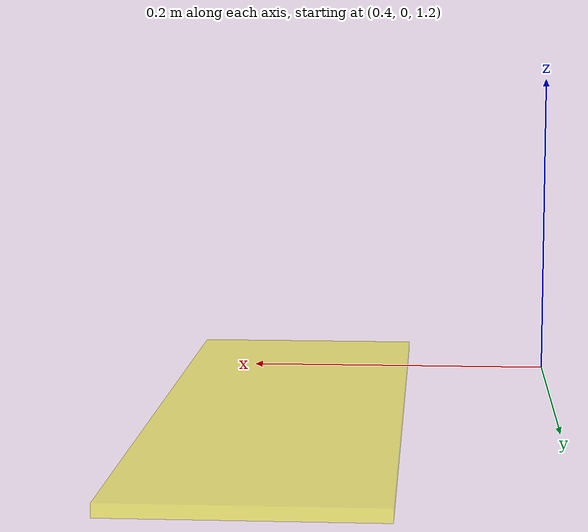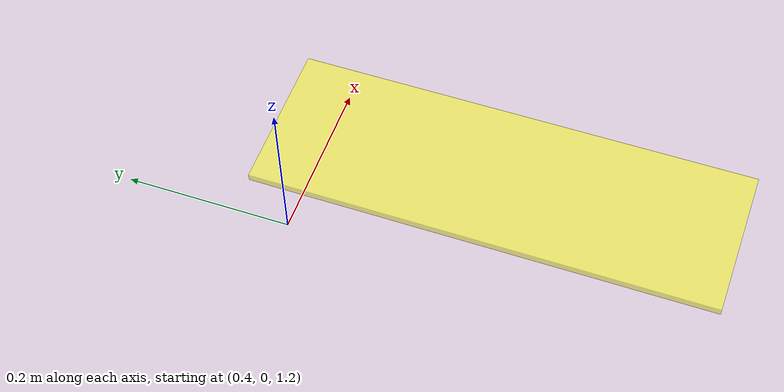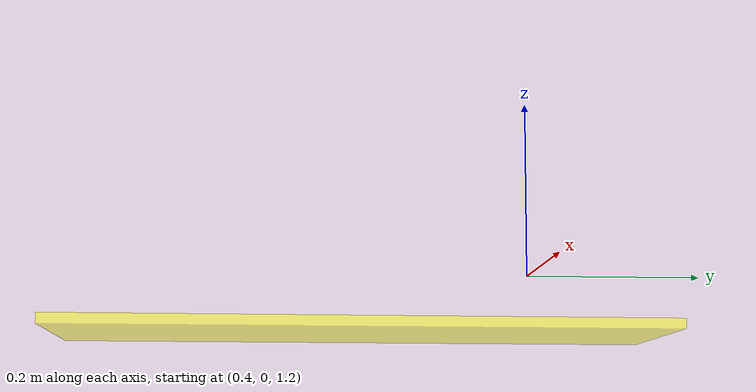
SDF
<?xml version="1.0" ?>
<sdf version="1.5">
  <model name="thinPlate">
    <static>true</static>
    <link name="link">
        <pose>0.6 -0.2 1.12 0 0 0</pose>

        <collision name="collision">
            <geometry>
                <box>
                    <size>0.2 0.6 0.01</size>
                </box>
            </geometry>
        </collision>

        <visual name="visual">
            <geometry>
                  <box>
                        <size>0.2 0.6 0.01</size>
                  </box>
            </geometry>

            <material>
                    <ambient> 1.0 1.0 0.0 0.6 </ambient>
                    <diffuse> 1.0 1.0 0.0 0.6 </diffuse>
            </material>

            <transparency>0.5</transparency>

        </visual>

    </link>
    <plugin name="yarp_model_move" filename="yarp_model_move/libyarp_model_move.so"/>

  </model>
</sdf>
